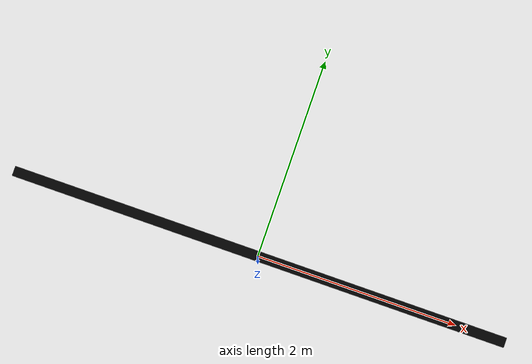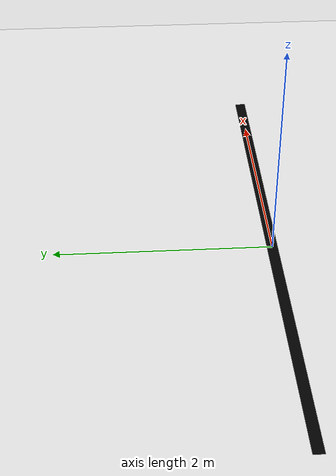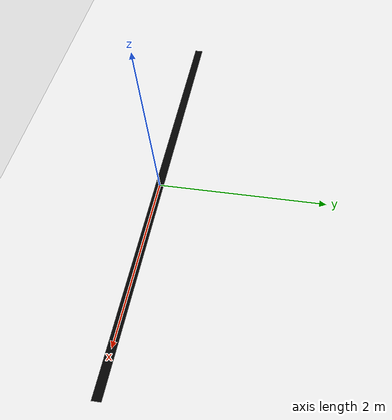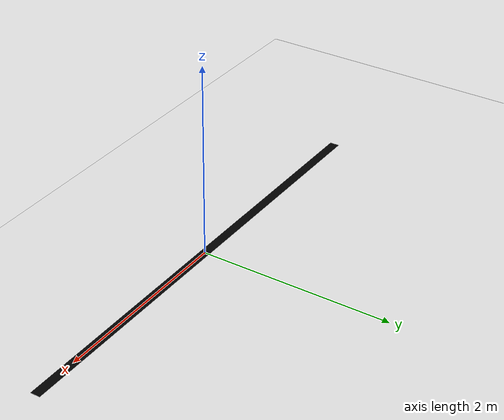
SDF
<?xml version="1.0"?>
<sdf version="1.6">
  <world name="line_follower_world">

    <!-- Lumière du soleil -->
    <include>
      <uri>model://sun</uri>
    </include>

    <!-- Sol avec ligne noire -->
    <model name="ground_plane">
      <static>true</static>
      <link name="link">
        <collision name="collision">
          <geometry>
            <plane>
              <normal>0 0 1</normal>
              <size>20 20</size>
            </plane>
          </geometry>
        </collision>
        <visual name="visual">
          <geometry>
            <plane>
              <normal>0 0 1</normal>
              <size>20 20</size>
            </plane>
          </geometry>
          <material>
            <script>
              <uri>file://media/materials/scripts/gazebo.material</uri>
              <name>Gazebo/White</name>
            </script>
          </material>
        </visual>
      </link>
    </model>

    <!-- Ligne noire simple (rectangle) -->
    <model name="black_line">
      <static>true</static>
      <pose>0 0 0.001 0 0 0</pose>
      <link name="link">
        <visual name="visual">
          <geometry>
            <box>
              <size>5 0.1 0.001</size>
            </box>
          </geometry>
          <material>
            <ambient>0 0 0 1</ambient>
            <diffuse>0 0 0 1</diffuse>
          </material>
        </visual>
      </link>
    </model>

  </world>
</sdf>
